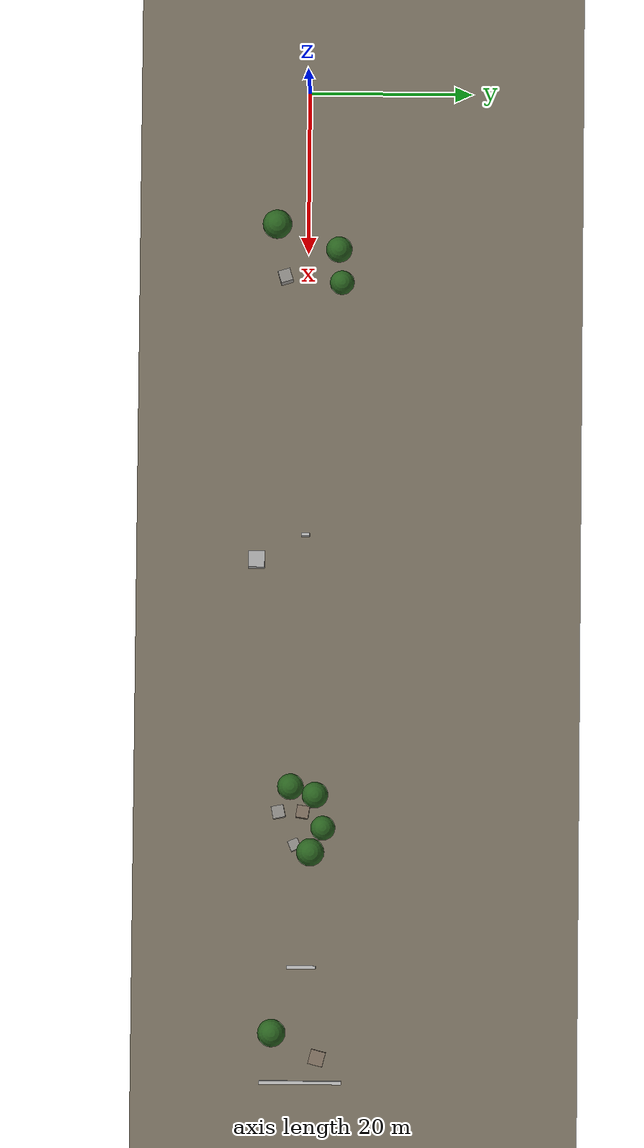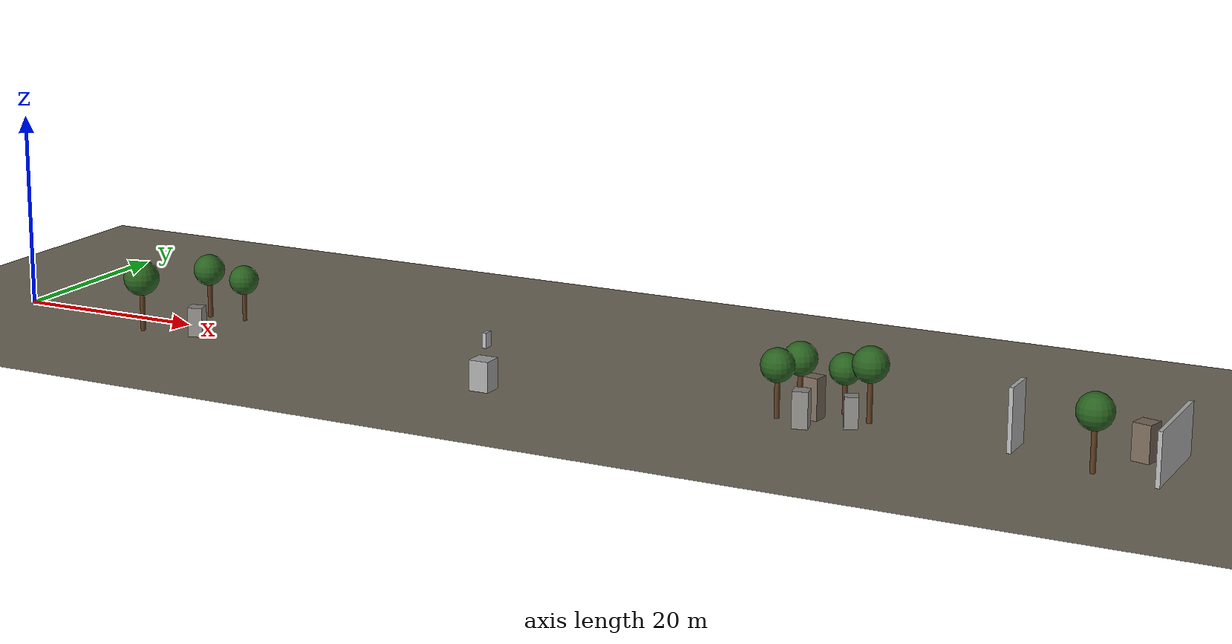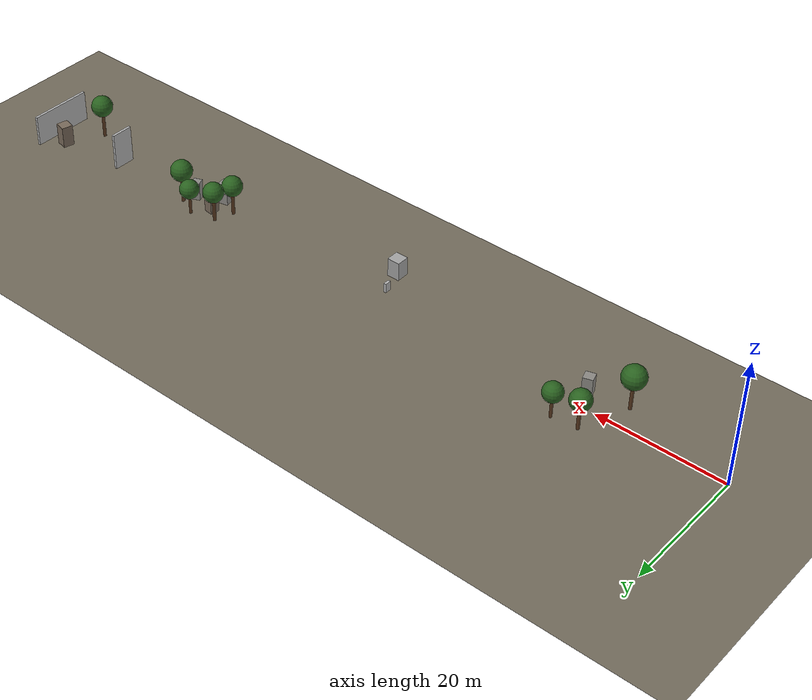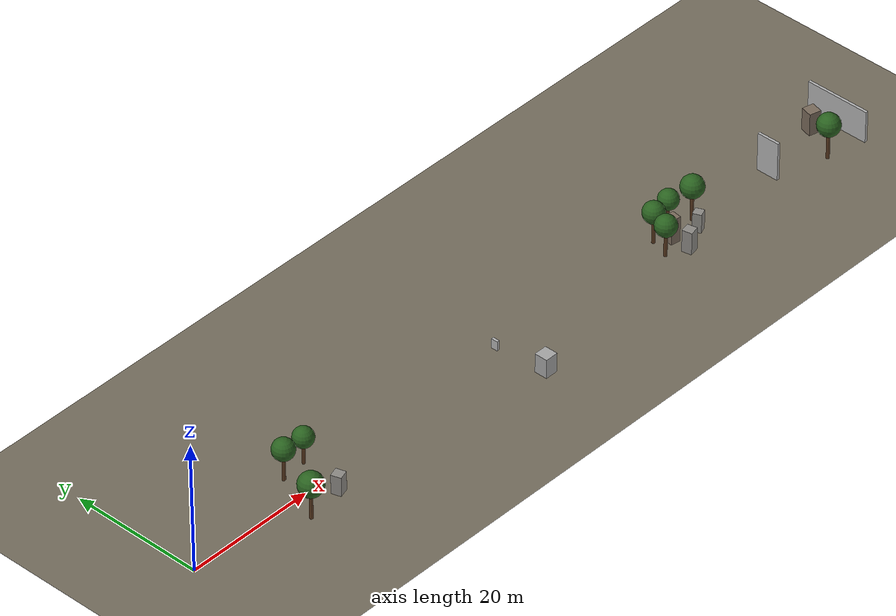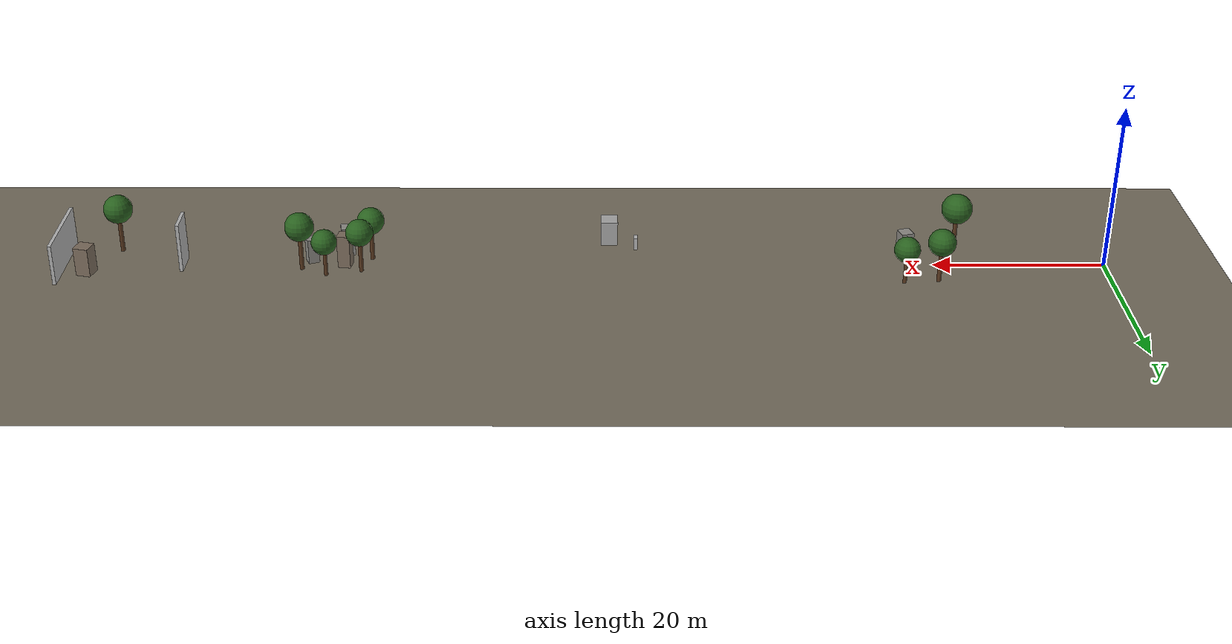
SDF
<?xml version="1.0" ?>
<sdf version="1.9">
  <world name="env_zones">
    <physics name="1ms" type="ignore">
      <max_step_size>0.001</max_step_size>
      <real_time_factor>1.0</real_time_factor>
    </physics>

    <plugin filename="gz-sim-physics-system"
      name="gz::sim::systems::Physics">
    </plugin>
    <plugin
      filename="gz-sim-sensors-system"
      name="gz::sim::systems::Sensors">
      <render_engine>ogre2</render_engine>
    </plugin>
    <plugin filename="gz-sim-user-commands-system"
      name="gz::sim::systems::UserCommands">
    </plugin>
    <plugin filename="gz-sim-scene-broadcaster-system"
      name="gz::sim::systems::SceneBroadcaster">
    </plugin>
    <plugin filename="gz-sim-imu-system"
      name="gz::sim::systems::Imu">
    </plugin>
    <plugin filename="gz-sim-navsat-system"
      name="gz::sim::systems::NavSat">
    </plugin>

    <scene>
      <ambient>1.0 1.0 1.0</ambient>
      <background>0.8 0.8 0.8</background>
    </scene>

    <spherical_coordinates>
      <latitude_deg>-35.363262</latitude_deg>
      <longitude_deg>149.165237</longitude_deg>
      <elevation>584</elevation>
      <heading_deg>0</heading_deg>
      <surface_model>EARTH_WGS84</surface_model>
    </spherical_coordinates>

    <light type="directional" name="sun">
      <cast_shadows>true</cast_shadows>
      <pose>0 0 10 0 0 0</pose>
      <diffuse>0.8 0.8 0.8 1</diffuse>
      <specular>0.8 0.8 0.8 1</specular>
      <attenuation>
        <range>1000</range>
        <constant>0.9</constant>
        <linear>0.01</linear>
        <quadratic>0.001</quadratic>
      </attenuation>
      <direction>-0.5 0.1 -0.9</direction>
    </light>

    <!-- Large enough to cover the full ~125m corridor with margin. -->
    <model name="ground_plane">
      <static>true</static>
      <link name="link">
        <collision name="collision">
          <geometry>
            <plane>
              <normal>0 0 1</normal>
              <size>320 80</size>
            </plane>
          </geometry>
        </collision>
        <visual name="visual">
          <geometry>
            <plane>
              <normal>0 0 1</normal>
              <size>320 80</size>
            </plane>
          </geometry>
          <material>
            <ambient>0.45 0.42 0.36 1</ambient>
            <diffuse>0.45 0.42 0.36 1</diffuse>
            <pbr>
              <metal>
                <albedo_map>model://obst_avoidance/models/textures/ground_gravel.png</albedo_map>
                <roughness>0.9</roughness>
              </metal>
            </pbr>
          </material>
        </visual>
      </link>
    </model>

    <model name="axes">
      <static>1</static>
      <link name="link">
        <visual name="r">
          <cast_shadows>0</cast_shadows>
          <pose>5 0 0.1 0 0 0</pose>
          <geometry>
            <box>
              <size>10 0.01 0.01</size>
            </box>
          </geometry>
          <material>
            <ambient>1 0 0 0.8</ambient>
            <diffuse>1 0 0 0.8</diffuse>
            <emissive>1 0 0 0.8</emissive>
            <specular>0.5 0.5 0.5 0.8</specular>
          </material>
        </visual>
        <visual name="g">
          <cast_shadows>0</cast_shadows>
          <pose>0 5 0.1 0 0 0</pose>
          <geometry>
            <box>
              <size>0.01 10 0.01</size>
            </box>
          </geometry>
          <material>
            <ambient>0 1 0 0.8</ambient>
            <diffuse>0 1 0 0.8</diffuse>
            <emissive>0 1 0 0.8</emissive>
            <specular>0.5 0.5 0.5 0.8</specular>
          </material>
        </visual>
        <visual name="b">
          <cast_shadows>0</cast_shadows>
          <pose>0 0 5.1 0 0 0</pose>
          <geometry>
            <box>
              <size>0.01 0.01 10</size>
            </box>
          </geometry>
          <material>
            <ambient>0 0 1 0.8</ambient>
            <diffuse>0 0 1 0.8</diffuse>
            <emissive>0 0 1 0.8</emissive>
            <specular>0.5 0.5 0.5 0.8</specular>
          </material>
        </visual>
        <sensor name="navsat_sensor" type="navsat">
          <always_on>1</always_on>
          <update_rate>1</update_rate>
        </sensor>
      </link>
    </model>

    <!-- ================= ZONE A: x=15-25, TEXTURED, moderate density ================= -->

    <model name="treeA1">
      <static>true</static>
      <pose>17 -3.8 0 0 0 0</pose>
      <link name="trunk">
        <collision name="collision">
          <geometry><cylinder><radius>0.25</radius><length>5</length></cylinder></geometry>
          <pose>0 0 2.5 0 0 0</pose>
        </collision>
        <visual name="trunk_visual">
          <geometry><cylinder><radius>0.25</radius><length>5</length></cylinder></geometry>
          <pose>0 0 2.5 0 0 0</pose>
          <material>
            <ambient>0.35 0.22 0.12 1</ambient>
            <diffuse>0.35 0.22 0.12 1</diffuse>
            <pbr><metal><albedo_map>model://obst_avoidance/models/textures/bark.png</albedo_map><roughness>0.85</roughness></metal></pbr>
          </material>
        </visual>
        <visual name="leaves">
          <geometry><sphere><radius>1.8</radius></sphere></geometry>
          <pose>0 0 5.5 0 0 0</pose>
          <material>
            <ambient>0.16 0.38 0.12 1</ambient>
            <diffuse>0.16 0.38 0.12 1</diffuse>
            <pbr><metal><albedo_map>model://obst_avoidance/models/textures/leaves.png</albedo_map><roughness>0.9</roughness></metal></pbr>
          </material>
        </visual>
      </link>
    </model>

    <model name="treeA2">
      <static>true</static>
      <pose>20 3.8 0 0 0 0</pose>
      <link name="trunk">
        <collision name="collision">
          <geometry><cylinder><radius>0.25</radius><length>4.5</length></cylinder></geometry>
          <pose>0 0 2.25 0 0 0</pose>
        </collision>
        <visual name="trunk_visual">
          <geometry><cylinder><radius>0.25</radius><length>4.5</length></cylinder></geometry>
          <pose>0 0 2.25 0 0 0</pose>
          <material>
            <ambient>0.35 0.22 0.12 1</ambient>
            <diffuse>0.35 0.22 0.12 1</diffuse>
            <pbr><metal><albedo_map>model://obst_avoidance/models/textures/bark.png</albedo_map><roughness>0.85</roughness></metal></pbr>
          </material>
        </visual>
        <visual name="leaves">
          <geometry><sphere><radius>1.6</radius></sphere></geometry>
          <pose>0 0 5.0 0 0 0</pose>
          <material>
            <ambient>0.16 0.38 0.12 1</ambient>
            <diffuse>0.16 0.38 0.12 1</diffuse>
            <pbr><metal><albedo_map>model://obst_avoidance/models/textures/leaves.png</albedo_map><roughness>0.9</roughness></metal></pbr>
          </material>
        </visual>
      </link>
    </model>

    <model name="boxA1">
      <static>true</static>
      <pose>23 -2.8 0 0 0 0.3</pose>
      <link name="link">
        <collision name="collision">
          <geometry><box><size>1.5 1.5 3</size></box></geometry>
          <pose>0 0 1.5 0 0 0</pose>
        </collision>
        <visual name="visual">
          <geometry><box><size>1.5 1.5 3</size></box></geometry>
          <pose>0 0 1.5 0 0 0</pose>
          <material>
            <ambient>0.55 0.54 0.52 1</ambient>
            <diffuse>0.55 0.54 0.52 1</diffuse>
            <pbr><metal><albedo_map>model://obst_avoidance/models/textures/concrete.png</albedo_map><roughness>0.7</roughness></metal></pbr>
          </material>
        </visual>
      </link>
    </model>

    <model name="treeA3">
      <static>true</static>
      <pose>24 4.2 0 0 0 0</pose>
      <link name="trunk">
        <collision name="collision">
          <geometry><cylinder><radius>0.22</radius><length>4</length></cylinder></geometry>
          <pose>0 0 2 0 0 0</pose>
        </collision>
        <visual name="trunk_visual">
          <geometry><cylinder><radius>0.22</radius><length>4</length></cylinder></geometry>
          <pose>0 0 2 0 0 0</pose>
          <material>
            <ambient>0.35 0.22 0.12 1</ambient>
            <diffuse>0.35 0.22 0.12 1</diffuse>
            <pbr><metal><albedo_map>model://obst_avoidance/models/textures/bark.png</albedo_map><roughness>0.85</roughness></metal></pbr>
          </material>
        </visual>
        <visual name="leaves">
          <geometry><sphere><radius>1.5</radius></sphere></geometry>
          <pose>0 0 4.3 0 0 0</pose>
          <material>
            <ambient>0.16 0.38 0.12 1</ambient>
            <diffuse>0.16 0.38 0.12 1</diffuse>
            <pbr><metal><albedo_map>model://obst_avoidance/models/textures/leaves.png</albedo_map><roughness>0.9</roughness></metal></pbr>
          </material>
        </visual>
      </link>
    </model>

    <!-- ================= ZONE B: x=50-58, TEXTURELESS solid surfaces ================= -->

    <model name="wallB1">
      <static>true</static>
      <pose>55 0 3 0 0 0</pose>
      <link name="link">
        <collision name="collision">
          <geometry><box><size>0.4 1.0 1.5</size></box></geometry>
        </collision>
        <visual name="visual">
          <geometry><box><size>0.4 1.0 1.5</size></box></geometry>
          <material>
            <ambient>0.7 0.7 0.7 1</ambient>
            <diffuse>0.7 0.7 0.7 1</diffuse>
          </material>
        </visual>
      </link>
    </model>

    <model name="boxB1">
      <static>true</static>
      <pose>58 -6 0 0 0 0</pose>
      <link name="link">
        <collision name="collision">
          <geometry><box><size>2 2 3</size></box></geometry>
          <pose>0 0 1.5 0 0 0</pose>
        </collision>
        <visual name="visual">
          <geometry><box><size>2 2 3</size></box></geometry>
          <pose>0 0 1.5 0 0 0</pose>
          <material>
            <ambient>0.65 0.65 0.65 1</ambient>
            <diffuse>0.65 0.65 0.65 1</diffuse>
          </material>
        </visual>
      </link>
    </model>

    <!-- ================= ZONE C: x=85-95, TEXTURED, high density / tight gaps ================= -->

    <model name="treeC1">
      <static>true</static>
      <pose>86 -1.5 0 0 0 0</pose>
      <link name="trunk">
        <collision name="collision">
          <geometry><cylinder><radius>0.25</radius><length>4.5</length></cylinder></geometry>
          <pose>0 0 2.25 0 0 0</pose>
        </collision>
        <visual name="trunk_visual">
          <geometry><cylinder><radius>0.25</radius><length>4.5</length></cylinder></geometry>
          <pose>0 0 2.25 0 0 0</pose>
          <material>
            <ambient>0.35 0.22 0.12 1</ambient>
            <diffuse>0.35 0.22 0.12 1</diffuse>
            <pbr><metal><albedo_map>model://obst_avoidance/models/textures/bark.png</albedo_map><roughness>0.85</roughness></metal></pbr>
          </material>
        </visual>
        <visual name="leaves">
          <geometry><sphere><radius>1.6</radius></sphere></geometry>
          <pose>0 0 5.0 0 0 0</pose>
          <material>
            <ambient>0.16 0.38 0.12 1</ambient>
            <diffuse>0.16 0.38 0.12 1</diffuse>
            <pbr><metal><albedo_map>model://obst_avoidance/models/textures/leaves.png</albedo_map><roughness>0.9</roughness></metal></pbr>
          </material>
        </visual>
      </link>
    </model>

    <model name="treeC2">
      <static>true</static>
      <pose>87 1.5 0 0 0 0</pose>
      <link name="trunk">
        <collision name="collision">
          <geometry><cylinder><radius>0.25</radius><length>4.5</length></cylinder></geometry>
          <pose>0 0 2.25 0 0 0</pose>
        </collision>
        <visual name="trunk_visual">
          <geometry><cylinder><radius>0.25</radius><length>4.5</length></cylinder></geometry>
          <pose>0 0 2.25 0 0 0</pose>
          <material>
            <ambient>0.35 0.22 0.12 1</ambient>
            <diffuse>0.35 0.22 0.12 1</diffuse>
            <pbr><metal><albedo_map>model://obst_avoidance/models/textures/bark.png</albedo_map><roughness>0.85</roughness></metal></pbr>
          </material>
        </visual>
        <visual name="leaves">
          <geometry><sphere><radius>1.6</radius></sphere></geometry>
          <pose>0 0 5.0 0 0 0</pose>
          <material>
            <ambient>0.16 0.38 0.12 1</ambient>
            <diffuse>0.16 0.38 0.12 1</diffuse>
            <pbr><metal><albedo_map>model://obst_avoidance/models/textures/leaves.png</albedo_map><roughness>0.9</roughness></metal></pbr>
          </material>
        </visual>
      </link>
    </model>

    <model name="boxC1">
      <static>true</static>
      <pose>89 -3 0 0 0 0.2</pose>
      <link name="link">
        <collision name="collision">
          <geometry><box><size>1.5 1.5 3.5</size></box></geometry>
          <pose>0 0 1.75 0 0 0</pose>
        </collision>
        <visual name="visual">
          <geometry><box><size>1.5 1.5 3.5</size></box></geometry>
          <pose>0 0 1.75 0 0 0</pose>
          <material>
            <ambient>0.55 0.54 0.52 1</ambient>
            <diffuse>0.55 0.54 0.52 1</diffuse>
            <pbr><metal><albedo_map>model://obst_avoidance/models/textures/concrete.png</albedo_map><roughness>0.7</roughness></metal></pbr>
          </material>
        </visual>
      </link>
    </model>

    <model name="boxC2">
      <static>true</static>
      <pose>89 0 0 0 0 -0.15</pose>
      <link name="link">
        <collision name="collision">
          <geometry><box><size>1.5 1.5 4</size></box></geometry>
          <pose>0 0 2 0 0 0</pose>
        </collision>
        <visual name="visual">
          <geometry><box><size>1.5 1.5 4</size></box></geometry>
          <pose>0 0 2 0 0 0</pose>
          <material>
            <ambient>0.48 0.42 0.36 1</ambient>
            <diffuse>0.48 0.42 0.36 1</diffuse>
            <pbr><metal><albedo_map>model://obst_avoidance/models/textures/stone.png</albedo_map><roughness>0.8</roughness></metal></pbr>
          </material>
        </visual>
      </link>
    </model>

    <model name="treeC3">
      <static>true</static>
      <pose>91 2.5 0 0 0 0</pose>
      <link name="trunk">
        <collision name="collision">
          <geometry><cylinder><radius>0.22</radius><length>4</length></cylinder></geometry>
          <pose>0 0 2 0 0 0</pose>
        </collision>
        <visual name="trunk_visual">
          <geometry><cylinder><radius>0.22</radius><length>4</length></cylinder></geometry>
          <pose>0 0 2 0 0 0</pose>
          <material>
            <ambient>0.35 0.22 0.12 1</ambient>
            <diffuse>0.35 0.22 0.12 1</diffuse>
            <pbr><metal><albedo_map>model://obst_avoidance/models/textures/bark.png</albedo_map><roughness>0.85</roughness></metal></pbr>
          </material>
        </visual>
        <visual name="leaves">
          <geometry><sphere><radius>1.5</radius></sphere></geometry>
          <pose>0 0 4.3 0 0 0</pose>
          <material>
            <ambient>0.16 0.38 0.12 1</ambient>
            <diffuse>0.16 0.38 0.12 1</diffuse>
            <pbr><metal><albedo_map>model://obst_avoidance/models/textures/leaves.png</albedo_map><roughness>0.9</roughness></metal></pbr>
          </material>
        </visual>
      </link>
    </model>

    <model name="boxC3">
      <static>true</static>
      <pose>93 -1 0 0 0 0.4</pose>
      <link name="link">
        <collision name="collision">
          <geometry><box><size>1.3 1.3 3</size></box></geometry>
          <pose>0 0 1.5 0 0 0</pose>
        </collision>
        <visual name="visual">
          <geometry><box><size>1.3 1.3 3</size></box></geometry>
          <pose>0 0 1.5 0 0 0</pose>
          <material>
            <ambient>0.55 0.54 0.52 1</ambient>
            <diffuse>0.55 0.54 0.52 1</diffuse>
            <pbr><metal><albedo_map>model://obst_avoidance/models/textures/concrete.png</albedo_map><roughness>0.7</roughness></metal></pbr>
          </material>
        </visual>
      </link>
    </model>

    <model name="treeC4">
      <static>true</static>
      <pose>94 1 0 0 0 0</pose>
      <link name="trunk">
        <collision name="collision">
          <geometry><cylinder><radius>0.25</radius><length>5</length></cylinder></geometry>
          <pose>0 0 2.5 0 0 0</pose>
        </collision>
        <visual name="trunk_visual">
          <geometry><cylinder><radius>0.25</radius><length>5</length></cylinder></geometry>
          <pose>0 0 2.5 0 0 0</pose>
          <material>
            <ambient>0.35 0.22 0.12 1</ambient>
            <diffuse>0.35 0.22 0.12 1</diffuse>
            <pbr><metal><albedo_map>model://obst_avoidance/models/textures/bark.png</albedo_map><roughness>0.85</roughness></metal></pbr>
          </material>
        </visual>
        <visual name="leaves">
          <geometry><sphere><radius>1.7</radius></sphere></geometry>
          <pose>0 0 5.5 0 0 0</pose>
          <material>
            <ambient>0.16 0.38 0.12 1</ambient>
            <diffuse>0.16 0.38 0.12 1</diffuse>
            <pbr><metal><albedo_map>model://obst_avoidance/models/textures/leaves.png</albedo_map><roughness>0.9</roughness></metal></pbr>
          </material>
        </visual>
      </link>
    </model>

    <!-- ================= ZONE D: x=108-122, MIXED (textured + two textureless) ================= -->
    <model name="narrowD1">
      <static>true</static>
      <pose>108 0 3 0 0 0</pose>
      <link name="link">
        <collision name="collision">
          <geometry><box><size>0.4 3.5 6</size></box></geometry>
        </collision>
        <visual name="visual">
          <geometry><box><size>0.4 3.5 6</size></box></geometry>
          <material>
            <ambient>0.7 0.7 0.7 1</ambient>
            <diffuse>0.7 0.7 0.7 1</diffuse>
          </material>
        </visual>
      </link>
    </model>

    <model name="treeD1">
      <static>true</static>
      <pose>116 -3.5 0 0 0 0</pose>
      <link name="trunk">
        <collision name="collision">
          <geometry><cylinder><radius>0.25</radius><length>5</length></cylinder></geometry>
          <pose>0 0 2.5 0 0 0</pose>
        </collision>
        <visual name="trunk_visual">
          <geometry><cylinder><radius>0.25</radius><length>5</length></cylinder></geometry>
          <pose>0 0 2.5 0 0 0</pose>
          <material>
            <ambient>0.35 0.22 0.12 1</ambient>
            <diffuse>0.35 0.22 0.12 1</diffuse>
            <pbr><metal><albedo_map>model://obst_avoidance/models/textures/bark.png</albedo_map><roughness>0.85</roughness></metal></pbr>
          </material>
        </visual>
        <visual name="leaves">
          <geometry><sphere><radius>1.7</radius></sphere></geometry>
          <pose>0 0 5.5 0 0 0</pose>
          <material>
            <ambient>0.16 0.38 0.12 1</ambient>
            <diffuse>0.16 0.38 0.12 1</diffuse>
            <pbr><metal><albedo_map>model://obst_avoidance/models/textures/leaves.png</albedo_map><roughness>0.9</roughness></metal></pbr>
          </material>
        </visual>
      </link>
    </model>

    <model name="boxD1">
      <static>true</static>
      <pose>119 2 0 0 0 -0.25</pose>
      <link name="link">
        <collision name="collision">
          <geometry><box><size>1.8 1.8 3.5</size></box></geometry>
          <pose>0 0 1.75 0 0 0</pose>
        </collision>
        <visual name="visual">
          <geometry><box><size>1.8 1.8 3.5</size></box></geometry>
          <pose>0 0 1.75 0 0 0</pose>
          <material>
            <ambient>0.48 0.42 0.36 1</ambient>
            <diffuse>0.48 0.42 0.36 1</diffuse>
            <pbr><metal><albedo_map>model://obst_avoidance/models/textures/stone.png</albedo_map><roughness>0.8</roughness></metal></pbr>
          </material>
        </visual>
      </link>
    </model>

    <!-- The one deliberately textureless surface in this mixed zone,
         on the y=0 centerline - discrimination test target. -->
    <model name="wallD1">
      <static>true</static>
      <pose>122 0 2.5 0 0 0</pose>
      <link name="link">
        <collision name="collision">
          <geometry><box><size>0.4 10 5</size></box></geometry>
        </collision>
        <visual name="visual">
          <geometry><box><size>0.4 10 5</size></box></geometry>
          <material>
            <ambient>0.7 0.7 0.7 1</ambient>
            <diffuse>0.7 0.7 0.7 1</diffuse>
          </material>
        </visual>
      </link>
    </model>

  </world>
</sdf>
